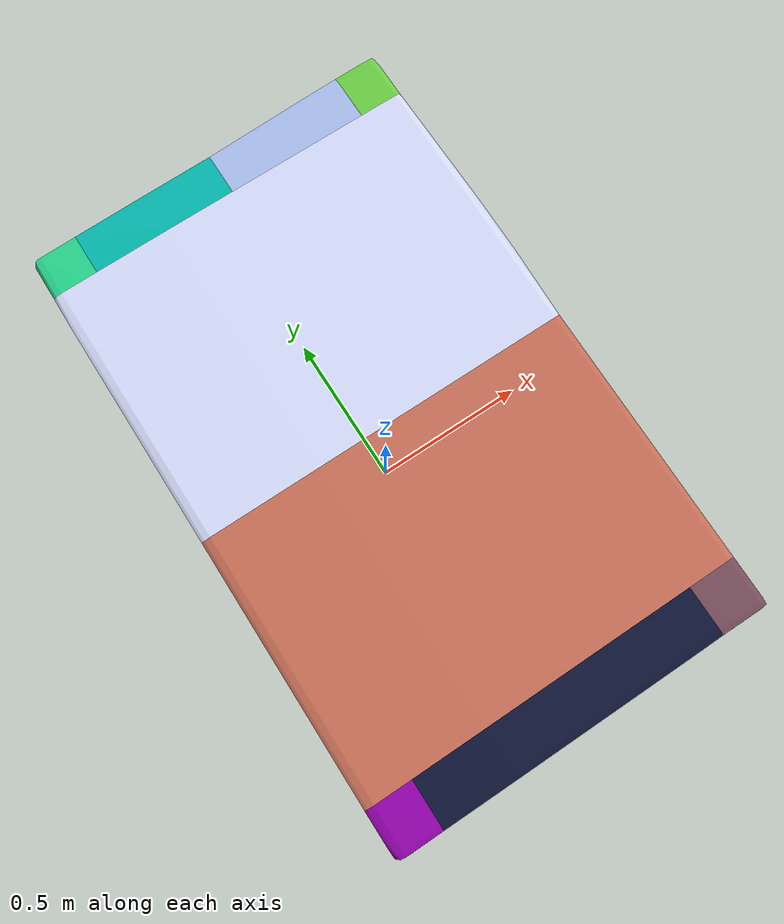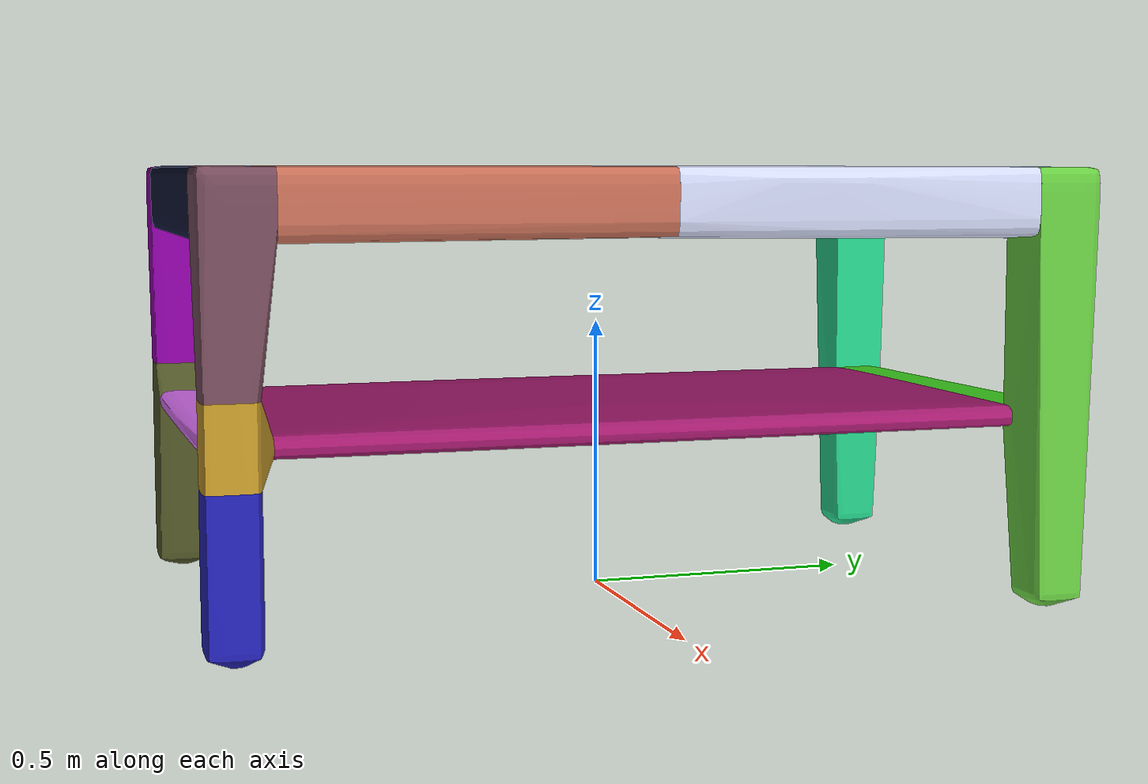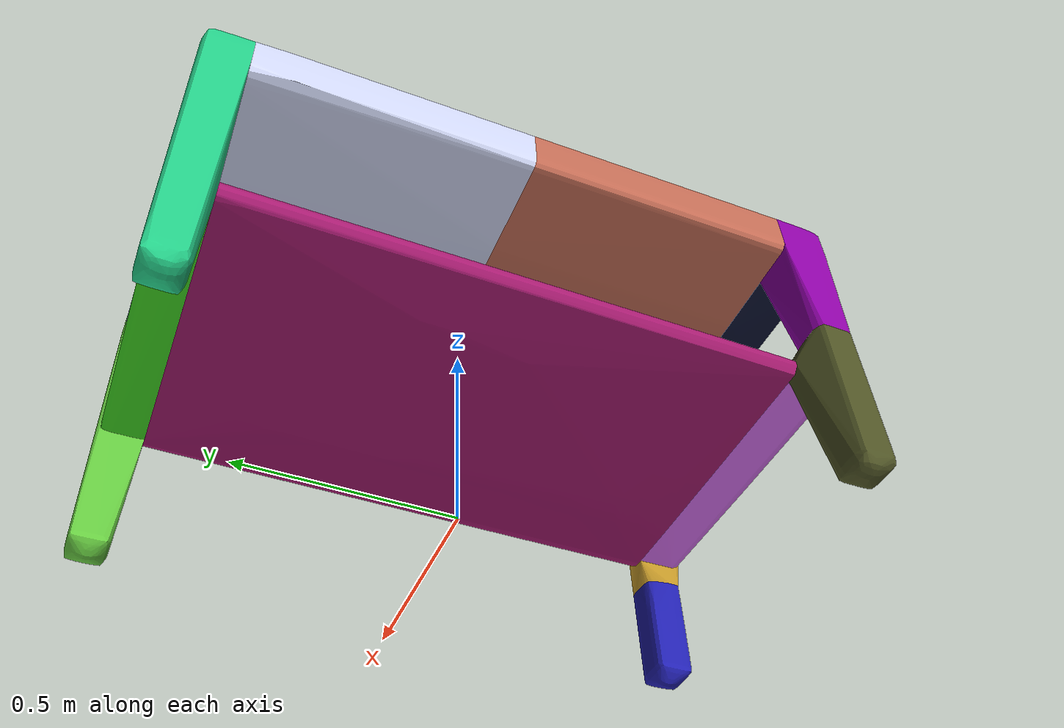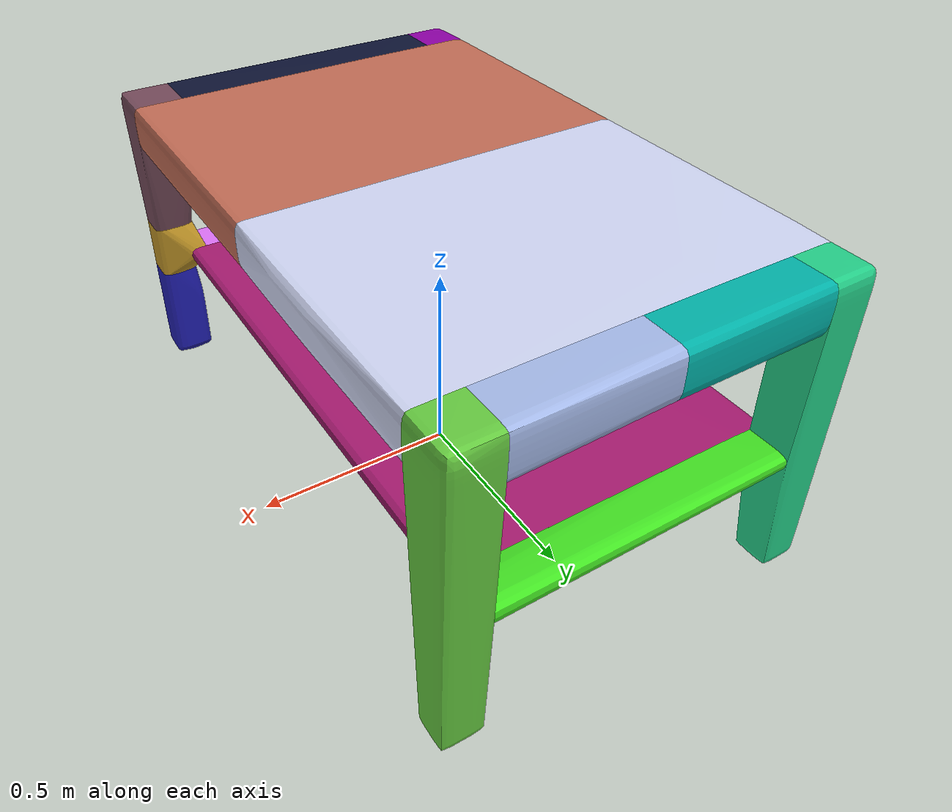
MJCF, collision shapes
<mujoco model="table">
  <default>
    <default class="visual">
      <geom group="1" type="mesh" contype="0" conaffinity="0"/>
    </default>
    <default class="collision">
      <geom group="0" type="mesh"/>
    </default>
  </default>
  <asset>
    <texture type="2d" name="texture_diffuse" file="texture_diffuse.png"/>
    <material name="CustomMaterial" texture="texture_diffuse" specular="0.5" shininess="0.5"/>
    <mesh name="table" file="table.obj"/>
    <mesh name="table_collision_0" file="table_collision_0.obj"/>
    <mesh name="table_collision_1" file="table_collision_1.obj"/>
    <mesh name="table_collision_2" file="table_collision_2.obj"/>
    <mesh name="table_collision_3" file="table_collision_3.obj"/>
    <mesh name="table_collision_4" file="table_collision_4.obj"/>
    <mesh name="table_collision_5" file="table_collision_5.obj"/>
    <mesh name="table_collision_6" file="table_collision_6.obj"/>
    <mesh name="table_collision_7" file="table_collision_7.obj"/>
    <mesh name="table_collision_8" file="table_collision_8.obj"/>
    <mesh name="table_collision_9" file="table_collision_9.obj"/>
    <mesh name="table_collision_10" file="table_collision_10.obj"/>
    <mesh name="table_collision_11" file="table_collision_11.obj"/>
    <mesh name="table_collision_12" file="table_collision_12.obj"/>
    <mesh name="table_collision_13" file="table_collision_13.obj"/>
    <mesh name="table_collision_14" file="table_collision_14.obj"/>
  </asset>
  <worldbody>
    <body>
      <body name="object">
        <geom material="CustomMaterial" mesh="table" class="visual"/>
        <geom mesh="table_collision_0" rgba="0.6565812744561698 0.10290940877603572 0.4419914301721751 1" class="collision"/>
        <geom mesh="table_collision_1" rgba="0.31159924005343287 0.3307460351588155 0.14644083988050582 1" class="collision"/>
        <geom mesh="table_collision_2" rgba="0.7656826151208475 0.4260640956688756 0.33480936721283705 1" class="collision"/>
        <geom mesh="table_collision_3" rgba="0.8189950934739105 0.8457203944917114 0.9616456590346965 1" class="collision"/>
        <geom mesh="table_collision_4" rgba="0.40031719896971374 0.7949469609429659 0.2518316433990254 1" class="collision"/>
        <geom mesh="table_collision_5" rgba="0.13910515159162906 0.813062072750957 0.5363169652700949 1" class="collision"/>
        <geom mesh="table_collision_6" rgba="0.25837462854735915 0.88338123204716 0.13440056227426833 1" class="collision"/>
        <geom mesh="table_collision_7" rgba="0.8814049152758032 0.4535890837541291 0.9858476297005925 1" class="collision"/>
        <geom mesh="table_collision_8" rgba="0.6459894421562291 0.7264283588369519 0.9117456416644601 1" class="collision"/>
        <geom mesh="table_collision_9" rgba="0.7631762497945672 0.5910628437436921 0.15383212479874397 1" class="collision"/>
        <geom mesh="table_collision_10" rgba="0.006509807074842611 0.7014876348895863 0.6644752873323722 1" class="collision"/>
        <geom mesh="table_collision_11" rgba="0.5584447870512105 0.00034548028434711053 0.6576845562351696 1" class="collision"/>
        <geom mesh="table_collision_12" rgba="0.052027687157271574 0.0755298126014069 0.20532014052074443 1" class="collision"/>
        <geom mesh="table_collision_13" rgba="0.13481257059801566 0.1266385467205965 0.7052297369870001 1" class="collision"/>
        <geom mesh="table_collision_14" rgba="0.45403047449021217 0.28887522380104613 0.3515828005280336 1" class="collision"/>
      </body>
    </body>
  </worldbody>
</mujoco>
